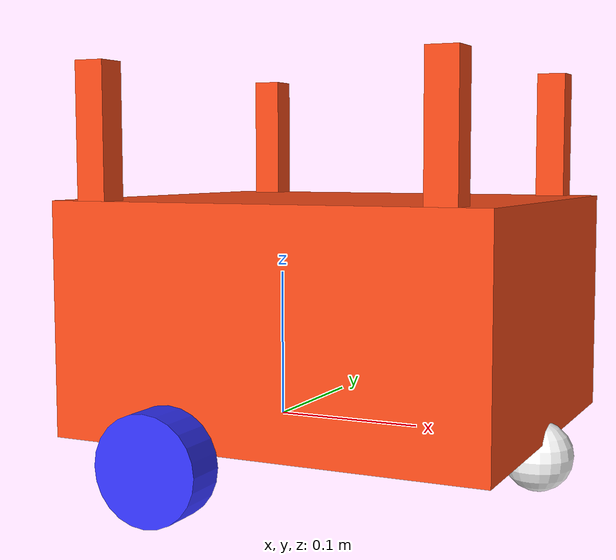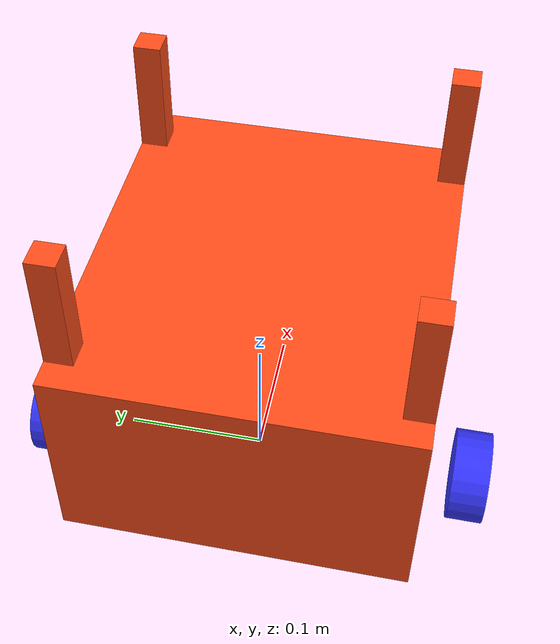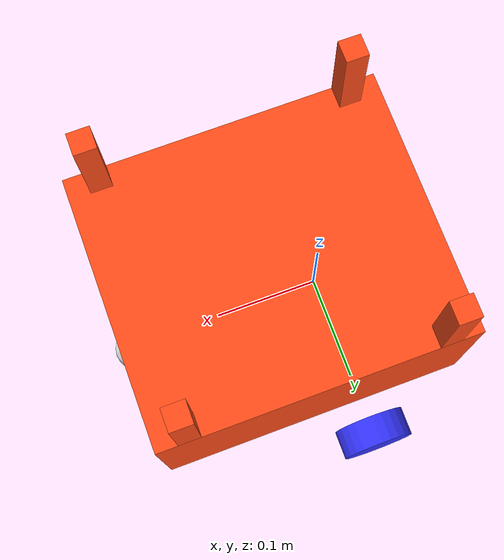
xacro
<?xml version="1.0"?>
<robot xmlns:xacro="http://www.ros.org/wiki/xacro" >

    <xacro:include filename="inertial_macros.xacro"/>
    <xacro:property name="chassis_mass" value="1.0"/>

    <xacro:property name="caster_wheel_radius" value="0.022775"/>
    <xacro:property name="caster_wheel_mass" value="0.01"/>
    <xacro:property name="caster_wheel_offset_x" value="0.296"/>
    <xacro:property name="caster_wheel_offset_z" value="${-wheel_radius + caster_wheel_radius}"/>

    <xacro:property name="base_link_chassis_offset_z" value="0.0761"/>
    <xacro:property name="base_link_chassis_offset_x" value="0.0464"/>

    <xacro:property name="chassis_length" value="0.290"/>
    <xacro:property name="chassis_width" value="0.250"/>
    <xacro:property name="chassis_height" value="0.1522"/>
    <xacro:property name="wheel_offset_x" value="0"/>
    <xacro:property name="wheel_offset_y" value="0.1596"/>
    <xacro:property name="wheel_offset_z" value="0"/>
    <xacro:property name="wheel_radius" value="0.03375"/>
    <xacro:property name="wheel_thickness" value="0.0265"/>
    <xacro:property name="wheel_mass" value="0.05"/>
    <xacro:property name="pillar_height" value="0.087"/>
    <xacro:property name="pillar_width" value="0.02"/>

    <material name="white">
        <color rgba="1 1 1 1" />
    </material>

    <material name="orange">
        <color rgba="1 0.3 0.1 1"/>
    </material>

    <material name="blue">
        <color rgba="0.2 0.2 1 1"/>
    </material>

    <material name="black">
        <color rgba="0 0 0 1"/>
    </material>

    <material name="red">
        <color rgba="1 0 0 1"/>
    </material>

    <!-- BASE LINK -->
    <link name="base_link">
    </link>

    <joint name="base_footprint_joint" type="fixed">
        <parent link="base_link"/>
        <child link="base_footprint"/>
        <origin xyz="0 0 0" rpy="0 0 0"/>
    </joint>

    <link name="base_footprint">
    </link>

    <!-- CHASSIS LINK -->

    <joint name="chassis_joint" type="fixed">
        <parent link="base_link"/>
        <child link="chassis"/>
        <origin xyz="${base_link_chassis_offset_x} 0 ${base_link_chassis_offset_z}"/>
    </joint>

    <link name="chassis">
        <visual>
            <origin xyz="0 0 0"/>
            <geometry>
                <box size="${chassis_length} ${chassis_width} ${chassis_height}"/>
            </geometry>
            <material name="orange"/>
        </visual>

        <visual> <!--front left-->
            <origin xyz="${chassis_length/2 - pillar_width - pillar_width/2} ${chassis_width/2 - pillar_width/2} ${chassis_height/2 + pillar_height/2}"/>
            <geometry>
                <box size="${pillar_width} ${pillar_width} ${pillar_height}"/>
            </geometry>
            <material name="orange"/>
        </visual>
        <visual> <!--front right-->
            <origin xyz="${chassis_length/2 - pillar_width - pillar_width/2} ${-chassis_width/2 + pillar_width/2} ${chassis_height/2 + pillar_height/2}"/>
            <geometry>
                <box size="${pillar_width} ${pillar_width} ${pillar_height}"/>
            </geometry>
            <material name="orange"/>
        </visual>
        <visual> <!--back left-->
            <origin xyz="${-chassis_length/2 + pillar_width + pillar_width/2} ${chassis_width/2 - pillar_width/2} ${chassis_height/2 + pillar_height/2}"/>
            <geometry>
                <box size="${pillar_width} ${pillar_width} ${pillar_height}"/>
            </geometry>
            <material name="orange"/>
        </visual>

        <visual> <!-- back right -->
            <origin xyz="${-chassis_length/2 + pillar_width + pillar_width/2} ${-chassis_width/2 + pillar_width/2} ${chassis_height/2 + pillar_height/2}"/>
            <geometry>
                <box size="${pillar_width} ${pillar_width} ${pillar_height}"/>
            </geometry>
            <material name="orange"/>
        </visual>

        <collision>
            <origin xyz="0 0 0"/>
            <geometry>
                <box size="${chassis_length} ${chassis_width} ${chassis_height}"/>
            </geometry>
        </collision>
        <xacro:inertial_box mass="0.5" x="${chassis_length}" y="${chassis_width}" z="${chassis_height}">
            <origin xyz="0 0 0" rpy="0 0 0"/>
        </xacro:inertial_box>
    </link>

    <gazebo reference="chassis">
        <material>Gazebo/Orange</material>
    </gazebo>

    <!-- LEFT WHEEL LINK -->

    <joint name="left_wheel_joint" type="continuous">
        <parent link="base_link"/>
        <child link="left_wheel"/>
        <origin xyz="0 ${wheel_offset_y} 0" rpy="-${pi/2} 0 0" />
        <axis xyz="0 0 1"/>
    </joint>

    <link name="left_wheel">
        <visual>
            <geometry>
                <cylinder radius="${wheel_radius}" length="${wheel_thickness}"/>
            </geometry>
            <material name="blue"/>
        </visual>
        <collision>
            <geometry>
                <sphere radius="${wheel_radius}"/>
            </geometry>
        </collision>
        <xacro:inertial_cylinder mass="${wheel_mass}" length="${wheel_thickness}" radius="${wheel_radius}">
            <origin xyz="0 0 0" rpy="0 0 0"/>
        </xacro:inertial_cylinder>
    </link>

    <gazebo reference="left_wheel">
        <material>Gazebo/Blue</material>
    </gazebo>

    <!-- RIGHT WHEEL LINK -->

    <joint name="right_wheel_joint" type="continuous">
        <parent link="base_link"/>
        <child link="right_wheel"/>
        <origin xyz="0 ${-wheel_offset_y} 0" rpy="${pi/2} 0 0" />
        <axis xyz="0 0 -1"/>
    </joint>

    <link name="right_wheel">
        <visual>
            <geometry>
                <cylinder radius="${wheel_radius}" length="${wheel_thickness}"/>
            </geometry>
            <material name="blue"/>
        </visual>
        <collision>
            <geometry>
                <sphere radius="${wheel_radius}"/>
            </geometry>
        </collision>
        <xacro:inertial_cylinder mass="${wheel_mass}" length="${wheel_thickness}" radius="${wheel_radius}">
            <origin xyz="0 0 0" rpy="0 0 0"/>
        </xacro:inertial_cylinder>
    </link>

    <gazebo reference="right_wheel">
        <material>Gazebo/Blue</material>
    </gazebo>

    <!-- CASTER WHEEL LINK -->

    <joint name="caster_wheel_joint_front" type="fixed">
        <parent link="base_link"/>
        <child link="caster_wheel_front"/>
        <origin xyz="0.184 0 ${caster_wheel_offset_z}"/>
    </joint>

    <link name="caster_wheel_front">
        <visual>
            <geometry>
                <sphere radius="${caster_wheel_radius}"/>
            </geometry>
            <material name="white"/>
        </visual>
        <collision>
            <geometry>
                <sphere radius="${caster_wheel_radius}"/>
            </geometry>
        </collision>
        <xacro:inertial_sphere mass="${caster_wheel_mass}" radius="${caster_wheel_radius}">
            <origin xyz="0 0 0" rpy="0 0 0"/>
        </xacro:inertial_sphere>
    </link>

    <gazebo reference="caster_wheel_front">
        <material>Gazebo/White</material>
        <mu1 value="0.001"/>
        <mu2 value="0.001"/>
    </gazebo>

</robot>
